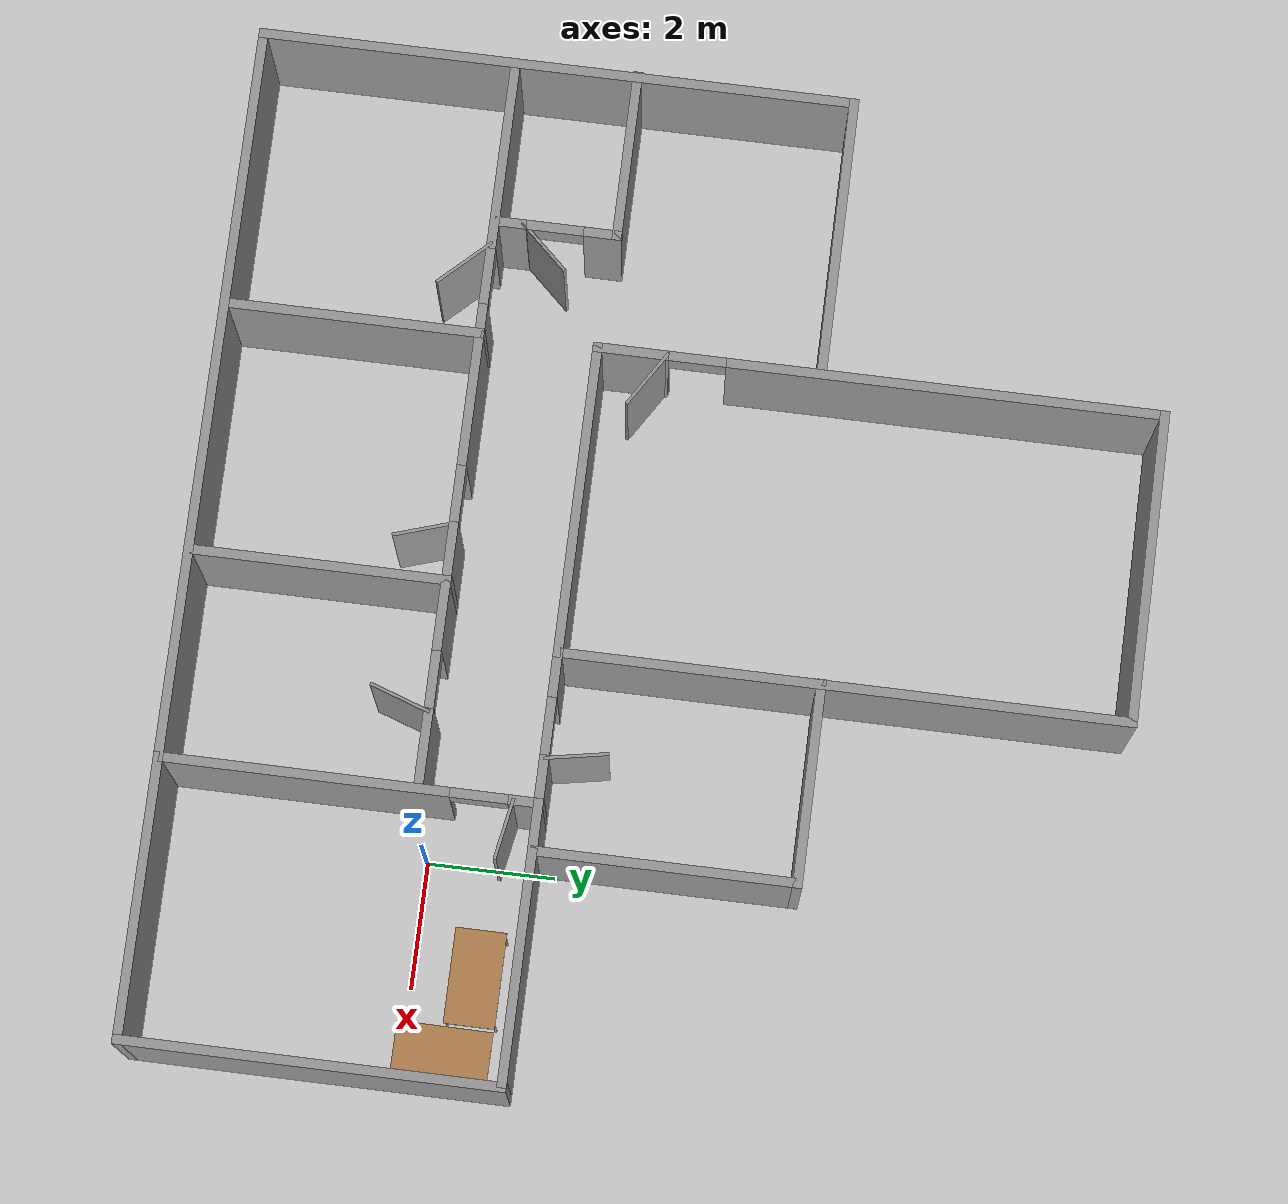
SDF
<sdf version="1.6">
 <world name="default">
  <light name="sun" type="directional">
   <pose>0 0 10 0 -0 0</pose>
   <diffuse>0.8 0.8 0.8 1</diffuse>
   <specular>0.2 0.2 0.2 1</specular>
   <attenuation>
    <range>1000</range>
    <constant>0.9</constant>
    <linear>0.01</linear>
    <quadratic>0.001</quadratic>
   </attenuation>
   <direction>-0.5 0.1 -0.9</direction>
  </light>
  <model name="ground_plane">
   <static>1</static>
   <link name="link">
    <collision name="collision">
     <geometry><plane><normal>0 0 1</normal><size>100 100</size></plane></geometry>
     <surface>
      <contact><collide_bitmask>65535</collide_bitmask></contact>
      <friction><ode><mu>100</mu><mu2>50</mu2></ode></friction>
     </surface>
    </collision>
    <visual name="visual">
     <cast_shadows>0</cast_shadows>
     <geometry><plane><normal>0 0 1</normal><size>100 100</size></plane></geometry>
     <material>
      <script><uri>file://media/materials/scripts/gazebo.material</uri><name>Gazebo/Grey</name></script>
     </material>
    </visual>
   </link>
  </model>
  <gravity>0 0 -9.8</gravity>
  <magnetic_field>6e-06 2.3e-05 -4.2e-05</magnetic_field>
  <atmosphere type="adiabatic"/>
  <physics name="default_physics" default="0" type="ode">
   <max_step_size>0.001</max_step_size>
   <real_time_factor>1</real_time_factor>
   <real_time_update_rate>1000</real_time_update_rate>
  </physics>
  <scene><ambient>0.4 0.4 0.4 1</ambient><background>0.7 0.7 0.7 1</background><shadows>1</shadows></scene>
  <audio><device>default</device></audio>
  <spherical_coordinates>
   <surface_model>EARTH_WGS84</surface_model>
   <latitude_deg>0</latitude_deg>
   <longitude_deg>0</longitude_deg>
   <elevation>0</elevation>
   <heading_deg>0</heading_deg>
  </spherical_coordinates>
  <model name="testhome">
   <pose>-4.44101 3.19839 0 0 -0 0</pose>
   <link name="Wall_0">
    <collision name="Wall_0_Collision">
     <geometry><box><size>5 0.15 2.5</size></box></geometry>
     <pose>0 0 1.25 0 -0 0</pose>
    </collision>
    <visual name="Wall_0_Visual">
     <pose>0 0 1.25 0 -0 0</pose>
     <geometry><box><size>5 0.15 2.5</size></box></geometry>
     <material>
      <script><uri>file://media/materials/scripts/gazebo.material</uri><name>Gazebo/Grey</name></script>
      <ambient>1 1 1 1</ambient>
     </material>
     <meta><layer>0</layer></meta>
    </visual>
    <pose>-1.1417 7.35 0 0 -0 0</pose>
   </link>
   <link name="Wall_1">
    <collision name="Wall_1_Collision">
     <geometry><box><size>9 0.15 2.5</size></box></geometry>
     <pose>0 0 1.25 0 -0 0</pose>
    </collision>
    <visual name="Wall_1_Visual">
     <pose>0 0 1.25 0 -0 0</pose>
     <geometry><box><size>9 0.15 2.5</size></box></geometry>
     <material>
      <script><uri>file://media/materials/scripts/gazebo.material</uri><name>Gazebo/Grey</name></script>
      <ambient>1 1 1 1</ambient>
     </material>
     <meta><layer>0</layer></meta>
    </visual>
    <pose>1.2833 2.925 0 0 -0 -1.5708</pose>
   </link>
   <link name="Wall_12">
    <pose>-0.016701 -3.35 0 0 -0 0</pose>
    <visual name="Wall_12_Visual_0">
     <pose>-2.52863 0 1.25 0 -0 0</pose>
     <geometry><box><size>2.19275 0.15 2.5</size></box></geometry>
     <material>
      <script><uri>file://media/materials/scripts/gazebo.material</uri><name>Gazebo/Grey</name></script>
      <ambient>1 1 1 1</ambient>
     </material>
     <meta><layer>0</layer></meta>
    </visual>
    <collision name="Wall_12_Collision_0">
     <geometry><box><size>2.19275 0.15 2.5</size></box></geometry>
     <pose>-2.52863 0 1.25 0 -0 0</pose>
    </collision>
    <visual name="Wall_12_Visual_1">
     <pose>0.484155 0 1.25 0 -0 0</pose>
     <geometry><box><size>2.03281 0.15 2.5</size></box></geometry>
     <material>
      <script><uri>file://media/materials/scripts/gazebo.material</uri><name>Gazebo/Grey</name></script>
      <ambient>1 1 1 1</ambient>
     </material>
     <meta><layer>0</layer></meta>
    </visual>
    <collision name="Wall_12_Collision_1">
     <geometry><box><size>2.03281 0.15 2.5</size></box></geometry>
     <pose>0.484155 0 1.25 0 -0 0</pose>
    </collision>
    <visual name="Wall_12_Visual_2">
     <pose>3.01278 0 1.25 0 -0 0</pose>
     <geometry><box><size>1.22444 0.15 2.5</size></box></geometry>
     <material>
      <script><uri>file://media/materials/scripts/gazebo.material</uri><name>Gazebo/Grey</name></script>
      <ambient>1 1 1 1</ambient>
     </material>
     <meta><layer>0</layer></meta>
    </visual>
    <collision name="Wall_12_Collision_2">
     <geometry><box><size>1.22444 0.15 2.5</size></box></geometry>
     <pose>3.01278 0 1.25 0 -0 0</pose>
    </collision>
    <visual name="Wall_12_Visual_3">
     <pose>-0.982252 0 2.25 0 -0 0</pose>
     <geometry><box><size>0.9 0.15 0.5</size></box></geometry>
     <material>
      <script><uri>file://media/materials/scripts/gazebo.material</uri><name>Gazebo/Grey</name></script>
      <ambient>1 1 1 1</ambient>
     </material>
     <meta><layer>0</layer></meta>
    </visual>
    <collision name="Wall_12_Collision_3">
     <geometry><box><size>0.9 0.15 0.5</size></box></geometry>
     <pose>-0.982252 0 2.25 0 -0 0</pose>
    </collision>
    <visual name="Wall_12_Visual_4">
     <pose>1.95056 0 2.25 0 -0 0</pose>
     <geometry><box><size>0.9 0.15 0.5</size></box></geometry>
     <material>
      <script><uri>file://media/materials/scripts/gazebo.material</uri><name>Gazebo/Grey</name></script>
      <ambient>1 1 1 1</ambient>
     </material>
     <meta><layer>0</layer></meta>
    </visual>
    <collision name="Wall_12_Collision_4">
     <geometry><box><size>0.9 0.15 0.5</size></box></geometry>
     <pose>1.95056 0 2.25 0 -0 0</pose>
    </collision>
   </link>
   <link name="Wall_14">
    <collision name="Wall_14_Collision">
     <geometry><box><size>11.75 0.15 2.5</size></box></geometry>
     <pose>0 0 1.25 0 -0 0</pose>
    </collision>
    <visual name="Wall_14_Visual">
     <pose>0 0 1.25 0 -0 0</pose>
     <geometry><box><size>11.75 0.15 2.5</size></box></geometry>
     <material>
      <script><uri>file://media/materials/scripts/gazebo.material</uri><name>Gazebo/Grey</name></script>
      <ambient>1 1 1 1</ambient>
     </material>
     <meta><layer>0</layer></meta>
    </visual>
    <pose>-2.1667 -7.35 0 0 -0 3.14159</pose>
   </link>
   <link name="Wall_16">
    <collision name="Wall_16_Collision">
     <geometry><box><size>4 0.15 2.5</size></box></geometry>
     <pose>0 0 1.25 0 -0 0</pose>
    </collision>
    <visual name="Wall_16_Visual">
     <pose>0 0 1.25 0 -0 0</pose>
     <geometry><box><size>4 0.15 2.5</size></box></geometry>
     <material>
      <script><uri>file://media/materials/scripts/gazebo.material</uri><name>Gazebo/Grey</name></script>
      <ambient>1 1 1 1</ambient>
     </material>
     <meta><layer>0</layer></meta>
    </visual>
    <pose>-3.5667 -5.275 0 0 -0 -1.5708</pose>
   </link>
   <link name="Wall_18">
    <collision name="Wall_18_Collision">
     <geometry><box><size>4.04809 0.15 2.5</size></box></geometry>
     <pose>0 0 1.25 0 -0 0</pose>
    </collision>
    <visual name="Wall_18_Visual">
     <pose>0 0 1.25 0 -0 0</pose>
     <geometry><box><size>4.04809 0.15 2.5</size></box></geometry>
     <material>
      <script><uri>file://media/materials/scripts/gazebo.material</uri><name>Gazebo/Grey</name></script>
      <ambient>1 1 1 1</ambient>
     </material>
     <meta><layer>0</layer></meta>
    </visual>
    <pose>0.375182 -5.29361 0 0 -0 -1.5708</pose>
   </link>
   <link name="Wall_2">
    <collision name="Wall_2_Collision">
     <geometry><box><size>5 0.15 2.5</size></box></geometry>
     <pose>0 0 1.25 0 -0 0</pose>
    </collision>
    <visual name="Wall_2_Visual">
     <pose>0 0 1.25 0 -0 0</pose>
     <geometry><box><size>5 0.15 2.5</size></box></geometry>
     <material>
      <script><uri>file://media/materials/scripts/gazebo.material</uri><name>Gazebo/Grey</name></script>
      <ambient>1 1 1 1</ambient>
     </material>
     <meta><layer>0</layer></meta>
    </visual>
    <pose>-1.1417 -1.5 0 0 -0 3.14159</pose>
   </link>
   <link name="Wall_20">
    <collision name="Wall_20_Collision">
     <geometry><box><size>9.5 0.15 2.5</size></box></geometry>
     <pose>0 0 1.25 0 -0 0</pose>
    </collision>
    <visual name="Wall_20_Visual">
     <pose>0 0 1.25 0 -0 0</pose>
     <geometry><box><size>9.5 0.15 2.5</size></box></geometry>
     <material>
      <script><uri>file://media/materials/scripts/gazebo.material</uri><name>Gazebo/Grey</name></script>
      <ambient>1 1 1 1</ambient>
     </material>
     <meta><layer>0</layer></meta>
    </visual>
    <pose>-7.9667 -2.675 0 0 -0 1.5708</pose>
   </link>
   <link name="Wall_21">
    <collision name="Wall_21_Collision">
     <geometry><box><size>4.5 0.15 2.5</size></box></geometry>
     <pose>0 0 1.25 0 -0 0</pose>
    </collision>
    <visual name="Wall_21_Visual">
     <pose>0 0 1.25 0 -0 0</pose>
     <geometry><box><size>4.5 0.15 2.5</size></box></geometry>
     <material>
      <script><uri>file://media/materials/scripts/gazebo.material</uri><name>Gazebo/Grey</name></script>
      <ambient>1 1 1 1</ambient>
     </material>
     <meta><layer>0</layer></meta>
    </visual>
    <pose>-5.7917 2 0 0 -0 0</pose>
   </link>
   <link name="Wall_26">
    <pose>-5.7417 -3.35 0 0 -0 3.14159</pose>
    <visual name="Wall_26_Visual_0">
     <pose>-1.97635 0 1.25 0 -0 0</pose>
     <geometry><box><size>0.5473 0.15 2.5</size></box></geometry>
     <material>
      <script><uri>file://media/materials/scripts/gazebo.material</uri><name>Gazebo/Grey</name></script>
      <ambient>1 1 1 1</ambient>
     </material>
     <meta><layer>0</layer></meta>
    </visual>
    <collision name="Wall_26_Collision_0">
     <geometry><box><size>0.5473 0.15 2.5</size></box></geometry>
     <pose>-1.97635 0 1.25 0 -0 0</pose>
    </collision>
    <visual name="Wall_26_Visual_1">
     <pose>0.72365 0 1.25 0 -0 0</pose>
     <geometry><box><size>3.0527 0.15 2.5</size></box></geometry>
     <material>
      <script><uri>file://media/materials/scripts/gazebo.material</uri><name>Gazebo/Grey</name></script>
      <ambient>1 1 1 1</ambient>
     </material>
     <meta><layer>0</layer></meta>
    </visual>
    <collision name="Wall_26_Collision_1">
     <geometry><box><size>3.0527 0.15 2.5</size></box></geometry>
     <pose>0.72365 0 1.25 0 -0 0</pose>
    </collision>
    <visual name="Wall_26_Visual_2">
     <pose>-1.2527 0 2.25 0 -0 0</pose>
     <geometry><box><size>0.9 0.15 0.5</size></box></geometry>
     <material>
      <script><uri>file://media/materials/scripts/gazebo.material</uri><name>Gazebo/Grey</name></script>
      <ambient>1 1 1 1</ambient>
     </material>
     <meta><layer>0</layer></meta>
    </visual>
    <collision name="Wall_26_Collision_2">
     <geometry><box><size>0.9 0.15 0.5</size></box></geometry>
     <pose>-1.2527 0 2.25 0 -0 0</pose>
    </collision>
   </link>
   <link name="Wall_28">
    <collision name="Wall_28_Collision">
     <geometry><box><size>2.75 0.15 2.5</size></box></geometry>
     <pose>0 0 1.25 0 -0 0</pose>
    </collision>
    <visual name="Wall_28_Visual">
     <pose>0 0 1.25 0 -0 0</pose>
     <geometry><box><size>2.75 0.15 2.5</size></box></geometry>
     <material>
      <script><uri>file://media/materials/scripts/gazebo.material</uri><name>Gazebo/Grey</name></script>
      <ambient>1 1 1 1</ambient>
     </material>
     <meta><layer>0</layer></meta>
    </visual>
    <pose>-6.6833 -1.42466 0 0 -0 0</pose>
   </link>
   <link name="Wall_29">
    <pose>-5.3833 -2.34966 0 0 -0 -1.5708</pose>
    <visual name="Wall_29_Visual_0">
     <pose>-0.699924 0 1.25 0 -0 0</pose>
     <geometry><box><size>0.600151 0.15 2.5</size></box></geometry>
     <material>
      <script><uri>file://media/materials/scripts/gazebo.material</uri><name>Gazebo/Grey</name></script>
      <ambient>1 1 1 1</ambient>
     </material>
     <meta><layer>0</layer></meta>
    </visual>
    <collision name="Wall_29_Collision_0">
     <geometry><box><size>0.600151 0.15 2.5</size></box></geometry>
     <pose>-0.699924 0 1.25 0 -0 0</pose>
    </collision>
    <visual name="Wall_29_Visual_1">
     <pose>0.750076 0 1.25 0 -0 0</pose>
     <geometry><box><size>0.499849 0.15 2.5</size></box></geometry>
     <material>
      <script><uri>file://media/materials/scripts/gazebo.material</uri><name>Gazebo/Grey</name></script>
      <ambient>1 1 1 1</ambient>
     </material>
     <meta><layer>0</layer></meta>
    </visual>
    <collision name="Wall_29_Collision_1">
     <geometry><box><size>0.499849 0.15 2.5</size></box></geometry>
     <pose>0.750076 0 1.25 0 -0 0</pose>
    </collision>
    <visual name="Wall_29_Visual_2">
     <pose>0.050151 0 2.25 0 -0 0</pose>
     <geometry><box><size>0.9 0.15 0.5</size></box></geometry>
     <material>
      <script><uri>file://media/materials/scripts/gazebo.material</uri><name>Gazebo/Grey</name></script>
      <ambient>1 1 1 1</ambient>
     </material>
     <meta><layer>0</layer></meta>
    </visual>
    <collision name="Wall_29_Collision_2">
     <geometry><box><size>0.9 0.15 0.5</size></box></geometry>
     <pose>0.050151 0 2.25 0 -0 0</pose>
    </collision>
   </link>
   <link name="Wall_3">
    <pose>-3.5667 2.925 0 0 -0 1.5708</pose>
    <visual name="Wall_3_Visual_0">
     <pose>-3.90562 0 1.25 0 -0 0</pose>
     <geometry><box><size>1.18876 0.15 2.5</size></box></geometry>
     <material>
      <script><uri>file://media/materials/scripts/gazebo.material</uri><name>Gazebo/Grey</name></script>
      <ambient>1 1 1 1</ambient>
     </material>
     <meta><layer>0</layer></meta>
    </visual>
    <collision name="Wall_3_Collision_0">
     <geometry><box><size>1.18876 0.15 2.5</size></box></geometry>
     <pose>-3.90562 0 1.25 0 -0 0</pose>
    </collision>
    <visual name="Wall_3_Visual_1">
     <pose>1.04438 0 1.25 0 -0 0</pose>
     <geometry><box><size>6.91124 0.15 2.5</size></box></geometry>
     <material>
      <script><uri>file://media/materials/scripts/gazebo.material</uri><name>Gazebo/Grey</name></script>
      <ambient>1 1 1 1</ambient>
     </material>
     <meta><layer>0</layer></meta>
    </visual>
    <collision name="Wall_3_Collision_1">
     <geometry><box><size>6.91124 0.15 2.5</size></box></geometry>
     <pose>1.04438 0 1.25 0 -0 0</pose>
    </collision>
    <visual name="Wall_3_Visual_2">
     <pose>-2.86124 0 2.25 0 -0 0</pose>
     <geometry><box><size>0.9 0.15 0.5</size></box></geometry>
     <material>
      <script><uri>file://media/materials/scripts/gazebo.material</uri><name>Gazebo/Grey</name></script>
      <ambient>1 1 1 1</ambient>
     </material>
     <meta><layer>0</layer></meta>
    </visual>
    <collision name="Wall_3_Collision_2">
     <geometry><box><size>0.9 0.15 0.5</size></box></geometry>
     <pose>-2.86124 0 2.25 0 -0 0</pose>
    </collision>
   </link>
   <link name="Wall_34">
    <collision name="Wall_34_Collision">
     <geometry><box><size>3.24172 0.15 2.5</size></box></geometry>
     <pose>0 0 1.25 0 -0 0</pose>
    </collision>
    <visual name="Wall_34_Visual">
     <pose>0 0 1.25 0 -0 0</pose>
     <geometry><box><size>3.24172 0.15 2.5</size></box></geometry>
     <material>
      <script><uri>file://media/materials/scripts/gazebo.material</uri><name>Gazebo/Grey</name></script>
      <ambient>1 1 1 1</ambient>
     </material>
     <meta><layer>0</layer></meta>
    </visual>
    <pose>2.82102 2.56219 0 0 -0 0</pose>
   </link>
   <link name="Wall_35">
    <collision name="Wall_35_Collision">
     <geometry><box><size>4.15768 0.15 2.5</size></box></geometry>
     <pose>0 0 1.25 0 -0 0</pose>
    </collision>
    <visual name="Wall_35_Visual">
     <pose>0 0 1.25 0 -0 0</pose>
     <geometry><box><size>4.15768 0.15 2.5</size></box></geometry>
     <material>
      <script><uri>file://media/materials/scripts/gazebo.material</uri><name>Gazebo/Grey</name></script>
      <ambient>1 1 1 1</ambient>
     </material>
     <meta><layer>0</layer></meta>
    </visual>
    <pose>4.36791 0.549971 0 0 -0 -1.57026</pose>
   </link>
   <link name="Wall_37">
    <collision name="Wall_37_Collision">
     <geometry><box><size>1.03878 0.05 2.5</size></box></geometry>
     <pose>0 0 1.25 0 -0 0</pose>
    </collision>
    <visual name="Wall_37_Visual">
     <pose>0 0 1.25 0 -0 0</pose>
     <geometry><box><size>1.03878 0.05 2.5</size></box></geometry>
     <material>
      <script><uri>file://media/materials/scripts/gazebo.material</uri><name>Gazebo/Grey</name></script>
      <ambient>1 1 1 1</ambient>
     </material>
     <meta><layer>0</layer></meta>
    </visual>
    <pose>-3.16226 -0.669267 0 0 -0 -0.563316</pose>
   </link>
   <link name="Wall_39">
    <collision name="Wall_39_Collision">
     <geometry><box><size>1.02554 0.05 2.5</size></box></geometry>
     <pose>0 0 1.25 0 -0 0</pose>
    </collision>
    <visual name="Wall_39_Visual">
     <pose>0 0 1.25 0 -0 0</pose>
     <geometry><box><size>1.02554 0.05 2.5</size></box></geometry>
     <material>
      <script><uri>file://media/materials/scripts/gazebo.material</uri><name>Gazebo/Grey</name></script>
      <ambient>1 1 1 1</ambient>
     </material>
     <meta><layer>0</layer></meta>
    </visual>
    <pose>-5.06826 -2.53927 0 0 -0 0.827463</pose>
   </link>
   <link name="Wall_41">
    <collision name="Wall_41_Collision">
     <geometry><box><size>1.07703 0.05 2.5</size></box></geometry>
     <pose>0 0 1.25 0 -0 0</pose>
    </collision>
    <visual name="Wall_41_Visual">
     <pose>0 0 1.25 0 -0 0</pose>
     <geometry><box><size>1.07703 0.05 2.5</size></box></geometry>
     <material>
      <script><uri>file://media/materials/scripts/gazebo.material</uri><name>Gazebo/Grey</name></script>
      <ambient>1 1 1 1</ambient>
     </material>
     <meta><layer>0</layer></meta>
    </visual>
    <pose>-4.66526 -3.72727 0 0 -0 -0.815692</pose>
   </link>
   <link name="Wall_43">
    <collision name="Wall_43_Collision">
     <geometry><box><size>1.00444 0.05 2.5</size></box></geometry>
     <pose>0 0 1.25 0 -0 0</pose>
    </collision>
    <visual name="Wall_43_Visual">
     <pose>0 0 1.25 0 -0 0</pose>
     <geometry><box><size>1.00444 0.05 2.5</size></box></geometry>
     <material>
      <script><uri>file://media/materials/scripts/gazebo.material</uri><name>Gazebo/Grey</name></script>
      <ambient>1 1 1 1</ambient>
     </material>
     <meta><layer>0</layer></meta>
    </visual>
    <pose>2.84274 -1.02127 0 0 -0 1.75627</pose>
   </link>
   <link name="Wall_45">
    <collision name="Wall_45_Collision">
     <geometry><box><size>0.973571 0.05 2.5</size></box></geometry>
     <pose>0 0 1.25 0 -0 0</pose>
    </collision>
    <visual name="Wall_45_Visual">
     <pose>0 0 1.25 0 -0 0</pose>
     <geometry><box><size>0.973571 0.05 2.5</size></box></geometry>
     <material>
      <script><uri>file://media/materials/scripts/gazebo.material</uri><name>Gazebo/Grey</name></script>
      <ambient>1 1 1 1</ambient>
     </material>
     <meta><layer>0</layer></meta>
    </visual>
    <pose>4.08924 -1.96727 0 0 -0 -0.176366</pose>
   </link>
   <link name="Wall_47">
    <collision name="Wall_47_Collision">
     <geometry><box><size>1.00521 0.05 2.5</size></box></geometry>
     <pose>0 0 1.25 0 -0 0</pose>
    </collision>
    <visual name="Wall_47_Visual">
     <pose>0 0 1.25 0 -0 0</pose>
     <geometry><box><size>1.00521 0.05 2.5</size></box></geometry>
     <material>
      <script><uri>file://media/materials/scripts/gazebo.material</uri><name>Gazebo/Grey</name></script>
      <ambient>1 1 1 1</ambient>
     </material>
     <meta><layer>0</layer></meta>
    </visual>
    <pose>-0.382759 -3.79277 0 0 -0 -1.25898</pose>
   </link>
   <link name="Wall_49">
    <collision name="Wall_49_Collision">
     <geometry><box><size>1.00973 0.05 2.5</size></box></geometry>
     <pose>0 0 1.25 0 -0 0</pose>
    </collision>
    <visual name="Wall_49_Visual">
     <pose>0 0 1.25 0 -0 0</pose>
     <geometry><box><size>1.00973 0.05 2.5</size></box></geometry>
     <material>
      <script><uri>file://media/materials/scripts/gazebo.material</uri><name>Gazebo/Grey</name></script>
      <ambient>1 1 1 1</ambient>
     </material>
     <meta><layer>0</layer></meta>
    </visual>
    <pose>2.27874 -3.80777 0 0 -0 -1.89749</pose>
   </link>
   <link name="Wall_5">
    <pose>2.4583 -1.5 0 0 -0 0</pose>
    <visual name="Wall_5_Visual_0">
     <pose>-0.86293 0 1.25 0 -0 0</pose>
     <geometry><box><size>0.77414 0.15 2.5</size></box></geometry>
     <material>
      <script><uri>file://media/materials/scripts/gazebo.material</uri><name>Gazebo/Grey</name></script>
      <ambient>1 1 1 1</ambient>
     </material>
     <meta><layer>0</layer></meta>
    </visual>
    <collision name="Wall_5_Collision_0">
     <geometry><box><size>0.77414 0.15 2.5</size></box></geometry>
     <pose>-0.86293 0 1.25 0 -0 0</pose>
    </collision>
    <visual name="Wall_5_Visual_1">
     <pose>0.83707 0 1.25 0 -0 0</pose>
     <geometry><box><size>0.82586 0.15 2.5</size></box></geometry>
     <material>
      <script><uri>file://media/materials/scripts/gazebo.material</uri><name>Gazebo/Grey</name></script>
      <ambient>1 1 1 1</ambient>
     </material>
     <meta><layer>0</layer></meta>
    </visual>
    <collision name="Wall_5_Collision_1">
     <geometry><box><size>0.82586 0.15 2.5</size></box></geometry>
     <pose>0.83707 0 1.25 0 -0 0</pose>
    </collision>
    <visual name="Wall_5_Visual_2">
     <pose>-0.02586 0 2.25 0 -0 0</pose>
     <geometry><box><size>0.9 0.15 0.5</size></box></geometry>
     <material>
      <script><uri>file://media/materials/scripts/gazebo.material</uri><name>Gazebo/Grey</name></script>
      <ambient>1 1 1 1</ambient>
     </material>
     <meta><layer>0</layer></meta>
    </visual>
    <collision name="Wall_5_Collision_2">
     <geometry><box><size>0.9 0.15 0.5</size></box></geometry>
     <pose>-0.02586 0 2.25 0 -0 0</pose>
    </collision>
   </link>
   <link name="Wall_6">
    <collision name="Wall_6_Collision">
     <geometry><box><size>4.5 0.15 2.5</size></box></geometry>
     <pose>0 0 1.25 0 -0 0</pose>
    </collision>
    <visual name="Wall_6_Visual">
     <pose>0 0 1.25 0 -0 0</pose>
     <geometry><box><size>4.5 0.15 2.5</size></box></geometry>
     <material>
      <script><uri>file://media/materials/scripts/gazebo.material</uri><name>Gazebo/Grey</name></script>
      <ambient>1 1 1 1</ambient>
     </material>
     <meta><layer>0</layer></meta>
    </visual>
    <pose>5.8083 -1.5 0 0 -0 0</pose>
   </link>
   <link name="Wall_7">
    <collision name="Wall_7_Collision">
     <geometry><box><size>6 0.15 2.5</size></box></geometry>
     <pose>0 0 1.25 0 -0 0</pose>
    </collision>
    <visual name="Wall_7_Visual">
     <pose>0 0 1.25 0 -0 0</pose>
     <geometry><box><size>6 0.15 2.5</size></box></geometry>
     <material>
      <script><uri>file://media/materials/scripts/gazebo.material</uri><name>Gazebo/Grey</name></script>
      <ambient>1 1 1 1</ambient>
     </material>
     <meta><layer>0</layer></meta>
    </visual>
    <pose>7.9833 -4.425 0 0 -0 -1.5708</pose>
   </link>
   <link name="Wall_8">
    <collision name="Wall_8_Collision">
     <geometry><box><size>4.5 0.15 2.5</size></box></geometry>
     <pose>0 0 1.25 0 -0 0</pose>
    </collision>
    <visual name="Wall_8_Visual">
     <pose>0 0 1.25 0 -0 0</pose>
     <geometry><box><size>4.5 0.15 2.5</size></box></geometry>
     <material>
      <script><uri>file://media/materials/scripts/gazebo.material</uri><name>Gazebo/Grey</name></script>
      <ambient>1 1 1 1</ambient>
     </material>
     <meta><layer>0</layer></meta>
    </visual>
    <pose>5.8083 -7.35 0 0 -0 3.14159</pose>
   </link>
   <link name="Wall_9">
    <pose>3.6333 -4.425 0 0 -0 1.5708</pose>
    <visual name="Wall_9_Visual_0">
     <pose>-0.719735 0 1.25 0 -0 0</pose>
     <geometry><box><size>4.56053 0.15 2.5</size></box></geometry>
     <material>
      <script><uri>file://media/materials/scripts/gazebo.material</uri><name>Gazebo/Grey</name></script>
      <ambient>1 1 1 1</ambient>
     </material>
     <meta><layer>0</layer></meta>
    </visual>
    <collision name="Wall_9_Collision_0">
     <geometry><box><size>4.56053 0.15 2.5</size></box></geometry>
     <pose>-0.719735 0 1.25 0 -0 0</pose>
    </collision>
    <visual name="Wall_9_Visual_1">
     <pose>2.73027 0 1.25 0 -0 0</pose>
     <geometry><box><size>0.539471 0.15 2.5</size></box></geometry>
     <material>
      <script><uri>file://media/materials/scripts/gazebo.material</uri><name>Gazebo/Grey</name></script>
      <ambient>1 1 1 1</ambient>
     </material>
     <meta><layer>0</layer></meta>
    </visual>
    <collision name="Wall_9_Collision_1">
     <geometry><box><size>0.539471 0.15 2.5</size></box></geometry>
     <pose>2.73027 0 1.25 0 -0 0</pose>
    </collision>
    <visual name="Wall_9_Visual_2">
     <pose>2.01053 0 2.25 0 -0 0</pose>
     <geometry><box><size>0.9 0.15 0.5</size></box></geometry>
     <material>
      <script><uri>file://media/materials/scripts/gazebo.material</uri><name>Gazebo/Grey</name></script>
      <ambient>1 1 1 1</ambient>
     </material>
     <meta><layer>0</layer></meta>
    </visual>
    <collision name="Wall_9_Collision_2">
     <geometry><box><size>0.9 0.15 0.5</size></box></geometry>
     <pose>2.01053 0 2.25 0 -0 0</pose>
    </collision>
   </link>
   <static>1</static>
  </model>
  <model name="table">
   <static>1</static>
   <link name="link">
    <collision name="surface">
     <pose>0 0 1 0 -0 0</pose>
     <geometry><box><size>1.5 0.8 0.03</size></box></geometry>
     <surface><friction><ode><mu>0.6</mu><mu2>0.6</mu2></ode></friction></surface>
    </collision>
    <visual name="visual1">
     <pose>0 0 1 0 -0 0</pose>
     <geometry><box><size>1.5 0.8 0.03</size></box></geometry>
     <material>
      <script><uri>file://media/materials/scripts/gazebo.material</uri><name>Gazebo/Wood</name></script>
     </material>
    </visual>
    <collision name="front_left_leg">
     <pose>0.68 0.38 0.5 0 -0 0</pose>
     <geometry><cylinder><radius>0.02</radius><length>1</length></cylinder></geometry>
    </collision>
    <visual name="front_left_leg">
     <pose>0.68 0.38 0.5 0 -0 0</pose>
     <geometry><cylinder><radius>0.02</radius><length>1</length></cylinder></geometry>
     <material>
      <script><uri>file://media/materials/scripts/gazebo.material</uri><name>Gazebo/Grey</name></script>
     </material>
    </visual>
    <collision name="front_right_leg">
     <pose>0.68 -0.38 0.5 0 -0 0</pose>
     <geometry><cylinder><radius>0.02</radius><length>1</length></cylinder></geometry>
    </collision>
    <visual name="front_right_leg">
     <pose>0.68 -0.38 0.5 0 -0 0</pose>
     <geometry><cylinder><radius>0.02</radius><length>1</length></cylinder></geometry>
     <material>
      <script><uri>file://media/materials/scripts/gazebo.material</uri><name>Gazebo/Grey</name></script>
     </material>
    </visual>
    <collision name="back_right_leg">
     <pose>-0.68 -0.38 0.5 0 -0 0</pose>
     <geometry><cylinder><radius>0.02</radius><length>1</length></cylinder></geometry>
    </collision>
    <visual name="back_right_leg">
     <pose>-0.68 -0.38 0.5 0 -0 0</pose>
     <geometry><cylinder><radius>0.02</radius><length>1</length></cylinder></geometry>
     <material>
      <script><uri>file://media/materials/scripts/gazebo.material</uri><name>Gazebo/Grey</name></script>
     </material>
    </visual>
    <collision name="back_left_leg">
     <pose>-0.68 0.38 0.5 0 -0 0</pose>
     <geometry><cylinder><radius>0.02</radius><length>1</length></cylinder></geometry>
    </collision>
    <visual name="back_left_leg">
     <pose>-0.68 0.38 0.5 0 -0 0</pose>
     <geometry><cylinder><radius>0.02</radius><length>1</length></cylinder></geometry>
     <material>
      <script><uri>file://media/materials/scripts/gazebo.material</uri><name>Gazebo/Grey</name></script>
     </material>
    </visual>
   </link>
   <pose>1.8044 1.01644 0 0 -0 0</pose>
  </model>
  <model name="table_0">
   <static>1</static>
   <link name="link">
    <collision name="surface">
     <pose>0 0 1 0 -0 0</pose>
     <geometry><box><size>1.5 0.8 0.03</size></box></geometry>
     <surface><friction><ode><mu>0.6</mu><mu2>0.6</mu2></ode></friction></surface>
    </collision>
    <visual name="visual1">
     <pose>0 0 1 0 -0 0</pose>
     <geometry><box><size>1.5 0.8 0.03</size></box></geometry>
     <material>
      <script><uri>file://media/materials/scripts/gazebo.material</uri><name>Gazebo/Wood</name></script>
     </material>
    </visual>
    <collision name="front_left_leg">
     <pose>0.68 0.38 0.5 0 -0 0</pose>
     <geometry><cylinder><radius>0.02</radius><length>1</length></cylinder></geometry>
    </collision>
    <visual name="front_left_leg">
     <pose>0.68 0.38 0.5 0 -0 0</pose>
     <geometry><cylinder><radius>0.02</radius><length>1</length></cylinder></geometry>
     <material>
      <script><uri>file://media/materials/scripts/gazebo.material</uri><name>Gazebo/Grey</name></script>
     </material>
    </visual>
    <collision name="front_right_leg">
     <pose>0.68 -0.38 0.5 0 -0 0</pose>
     <geometry><cylinder><radius>0.02</radius><length>1</length></cylinder></geometry>
    </collision>
    <visual name="front_right_leg">
     <pose>0.68 -0.38 0.5 0 -0 0</pose>
     <geometry><cylinder><radius>0.02</radius><length>1</length></cylinder></geometry>
     <material>
      <script><uri>file://media/materials/scripts/gazebo.material</uri><name>Gazebo/Grey</name></script>
     </material>
    </visual>
    <collision name="back_right_leg">
     <pose>-0.68 -0.38 0.5 0 -0 0</pose>
     <geometry><cylinder><radius>0.02</radius><length>1</length></cylinder></geometry>
    </collision>
    <visual name="back_right_leg">
     <pose>-0.68 -0.38 0.5 0 -0 0</pose>
     <geometry><cylinder><radius>0.02</radius><length>1</length></cylinder></geometry>
     <material>
      <script><uri>file://media/materials/scripts/gazebo.material</uri><name>Gazebo/Grey</name></script>
     </material>
    </visual>
    <collision name="back_left_leg">
     <pose>-0.68 0.38 0.5 0 -0 0</pose>
     <geometry><cylinder><radius>0.02</radius><length>1</length></cylinder></geometry>
    </collision>
    <visual name="back_left_leg">
     <pose>-0.68 0.38 0.5 0 -0 0</pose>
     <geometry><cylinder><radius>0.02</radius><length>1</length></cylinder></geometry>
     <material>
      <script><uri>file://media/materials/scripts/gazebo.material</uri><name>Gazebo/Grey</name></script>
     </material>
    </visual>
   </link>
   <pose>2.99969 0.65421 0 0 -0 1.56389</pose>
  </model>
 </world>
</sdf>
